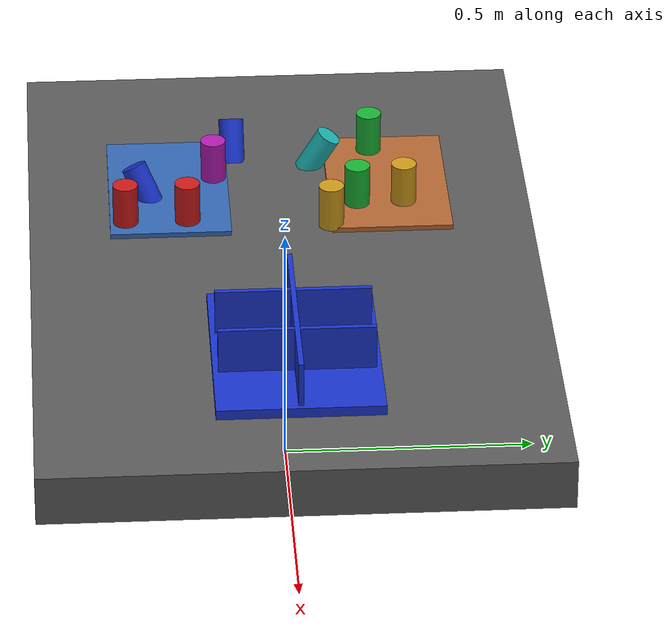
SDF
<?xml version="1.0" ?>
<sdf version="1.9">
  <!-- Standalone M1B scene.  The controller-backed Panda is spawned by the
       existing launch path; this file never alters the frozen M1A cube world. -->
  <world name="industrial_cylinder_v1">
    <physics name="bullet" type="bullet"><max_step_size>0.001</max_step_size><real_time_factor>1.0</real_time_factor></physics>
    <plugin name="gz::sim::systems::Physics" filename="gz-sim-physics-system"><engine><filename>gz-physics-bullet-featherstone-plugin</filename></engine></plugin>
    <plugin name="gz::sim::systems::UserCommands" filename="gz-sim-user-commands-system"/>
    <plugin name="gz::sim::systems::SceneBroadcaster" filename="gz-sim-scene-broadcaster-system"/>
    <plugin name="gz::sim::systems::Sensors" filename="gz-sim-sensors-system"><render_engine>ogre2</render_engine></plugin>
    <gravity>0 0 -9.81</gravity>
    <light type="directional" name="industrial_light"><pose>0 0 5 0 0 0</pose><direction>-0.3 0.2 -0.9</direction><diffuse>0.9 0.9 0.9 1</diffuse></light>
    <model name="industrial_work_table"><static>true</static><link name="link"><pose>0 0 0.4 0 0 0</pose><collision name="collision"><geometry><box><size>1.5 1.0 0.1</size></box></geometry></collision><visual name="visual"><geometry><box><size>1.5 1.0 0.1</size></box></geometry><material><diffuse>0.35 0.35 0.35 1</diffuse></material></visual></link></model>
    <model name="camera_fixture"><static>true</static><link name="camera_rgbd"><pose>-0.80 -0.80 1.40 0 0.77 0.93</pose><sensor name="front_rgbd" type="rgbd_camera"><always_on>1</always_on><update_rate>15</update_rate><topic>/xh/camera/rgbd</topic><camera><horizontal_fov>1.047</horizontal_fov><image><width>640</width><height>480</height><format>R8G8B8</format></image><clip><near>0.1</near><far>4.0</far></clip></camera></sensor></link></model>
    <model name="incoming_zone_a"><static>true</static><link name="link"><pose>-0.28 -0.22 0.455 0 0 0</pose><visual name="visual"><geometry><box><size>0.36 0.24 0.01</size></box></geometry><material><diffuse>0.2 0.4 0.7 1</diffuse></material></visual></link></model>
    <model name="incoming_zone_b"><static>true</static><link name="link"><pose>-0.28 0.22 0.455 0 0 0</pose><visual name="visual"><geometry><box><size>0.36 0.24 0.01</size></box></geometry><material><diffuse>0.7 0.4 0.2 1</diffuse></material></visual></link></model>
    <!-- M1B_RANDOM_PARTS_BEGIN -->
    <model name="cylinder_01"><pose>-0.1476 -0.1857 0.5000 0.0000 0.0000 1.0308</pose><link name="link"><inertial><mass>0.06</mass></inertial><collision name="collision"><geometry><cylinder><radius>0.025</radius><length>0.09</length></cylinder></geometry></collision><visual name="visual"><geometry><cylinder><radius>0.025</radius><length>0.09</length></cylinder></geometry><material><diffuse>0.800 0.100 0.100 1</diffuse><specular>0.15 0.15 0.15 1</specular></material></visual></link></model>
    <model name="cylinder_02"><pose>-0.4102 0.1920 0.5000 3.1416 0.0000 0.0340</pose><link name="link"><inertial><mass>0.06</mass></inertial><collision name="collision"><geometry><cylinder><radius>0.025</radius><length>0.09</length></cylinder></geometry></collision><visual name="visual"><geometry><cylinder><radius>0.025</radius><length>0.09</length></cylinder></geometry><material><diffuse>0.100 0.700 0.200 1</diffuse><specular>0.15 0.15 0.15 1</specular></material></visual></link></model>
    <model name="cylinder_03"><pose>-0.4245 -0.0858 0.4800 0.4500 -0.3000 -1.0084</pose><link name="link"><inertial><mass>0.06</mass></inertial><collision name="collision"><geometry><cylinder><radius>0.025</radius><length>0.09</length></cylinder></geometry></collision><visual name="visual"><geometry><cylinder><radius>0.025</radius><length>0.09</length></cylinder></geometry><material><diffuse>0.100 0.200 0.800 1</diffuse><specular>0.15 0.15 0.15 1</specular></material></visual></link></model>
    <model name="cylinder_04"><pose>-0.2016 0.2483 0.5000 0.0000 0.0000 0.8580</pose><link name="link"><inertial><mass>0.06</mass></inertial><collision name="collision"><geometry><cylinder><radius>0.025</radius><length>0.09</length></cylinder></geometry></collision><visual name="visual"><geometry><cylinder><radius>0.025</radius><length>0.09</length></cylinder></geometry><material><diffuse>0.800 0.600 0.100 1</diffuse><specular>0.15 0.15 0.15 1</specular></material></visual></link></model>
    <model name="cylinder_05"><pose>-0.3152 -0.1278 0.5000 3.1416 0.0000 -1.4793</pose><link name="link"><inertial><mass>0.06</mass></inertial><collision name="collision"><geometry><cylinder><radius>0.025</radius><length>0.09</length></cylinder></geometry></collision><visual name="visual"><geometry><cylinder><radius>0.025</radius><length>0.09</length></cylinder></geometry><material><diffuse>0.700 0.100 0.700 1</diffuse><specular>0.15 0.15 0.15 1</specular></material></visual></link></model>
    <model name="cylinder_06"><pose>-0.3708 0.0860 0.4800 0.4500 -0.3000 -2.6777</pose><link name="link"><inertial><mass>0.06</mass></inertial><collision name="collision"><geometry><cylinder><radius>0.025</radius><length>0.09</length></cylinder></geometry></collision><visual name="visual"><geometry><cylinder><radius>0.025</radius><length>0.09</length></cylinder></geometry><material><diffuse>0.100 0.700 0.700 1</diffuse><specular>0.15 0.15 0.15 1</specular></material></visual></link></model>
    <model name="cylinder_07"><pose>-0.1477 -0.3085 0.5000 0.0000 0.0000 -0.5576</pose><link name="link"><inertial><mass>0.06</mass></inertial><collision name="collision"><geometry><cylinder><radius>0.025</radius><length>0.09</length></cylinder></geometry></collision><visual name="visual"><geometry><cylinder><radius>0.025</radius><length>0.09</length></cylinder></geometry><material><diffuse>0.800 0.100 0.100 1</diffuse><specular>0.15 0.15 0.15 1</specular></material></visual></link></model>
    <model name="cylinder_08"><pose>-0.1990 0.1554 0.5000 3.1416 0.0000 -0.9506</pose><link name="link"><inertial><mass>0.06</mass></inertial><collision name="collision"><geometry><cylinder><radius>0.025</radius><length>0.09</length></cylinder></geometry></collision><visual name="visual"><geometry><cylinder><radius>0.025</radius><length>0.09</length></cylinder></geometry><material><diffuse>0.100 0.700 0.200 1</diffuse><specular>0.15 0.15 0.15 1</specular></material></visual></link></model>
    <model name="cylinder_09"><pose>-0.2519 -0.2704 0.4800 0.4500 -0.3000 -0.0980</pose><link name="link"><inertial><mass>0.06</mass></inertial><collision name="collision"><geometry><cylinder><radius>0.025</radius><length>0.09</length></cylinder></geometry></collision><visual name="visual"><geometry><cylinder><radius>0.025</radius><length>0.09</length></cylinder></geometry><material><diffuse>0.100 0.200 0.800 1</diffuse><specular>0.15 0.15 0.15 1</specular></material></visual></link></model>
    <model name="cylinder_10"><pose>-0.1225 0.0988 0.5000 0.0000 0.0000 -1.4531</pose><link name="link"><inertial><mass>0.06</mass></inertial><collision name="collision"><geometry><cylinder><radius>0.025</radius><length>0.09</length></cylinder></geometry></collision><visual name="visual"><geometry><cylinder><radius>0.025</radius><length>0.09</length></cylinder></geometry><material><diffuse>0.800 0.600 0.100 1</diffuse><specular>0.15 0.15 0.15 1</specular></material></visual></link></model>
    <!-- M1B_RANDOM_PARTS_END -->
    <model name="blue_partition_bin"><static>true</static><pose>0.36 0 0.45 0 0 0</pose><link name="link"><collision name="floor"><pose>0 0 0.01 0 0 0</pose><geometry><box><size>0.42 0.32 0.02</size></box></geometry></collision><visual name="floor_visual"><pose>0 0 0.01 0 0 0</pose><geometry><box><size>0.42 0.32 0.02</size></box></geometry><material><diffuse>0.1 0.2 0.8 1</diffuse></material></visual><visual name="row_divider"><pose>0 0 0.06 0 0 0</pose><geometry><box><size>0.40 0.01 0.10</size></box></geometry><material><diffuse>0.1 0.2 0.8 1</diffuse></material></visual><visual name="col_divider_a"><pose>-0.07 0 0.06 0 0 0</pose><geometry><box><size>0.01 0.30 0.10</size></box></geometry><material><diffuse>0.1 0.2 0.8 1</diffuse></material></visual><visual name="col_divider_b"><pose>0.07 0 0.06 0 0 0</pose><geometry><box><size>0.01 0.30 0.10</size></box></geometry><material><diffuse>0.1 0.2 0.8 1</diffuse></material></visual></link></model>
    <!-- Reserved only: second table, bin transport corridor, stackable-bin
         collision volume, and second arm mounting namespace. -->
  </world>
</sdf>
